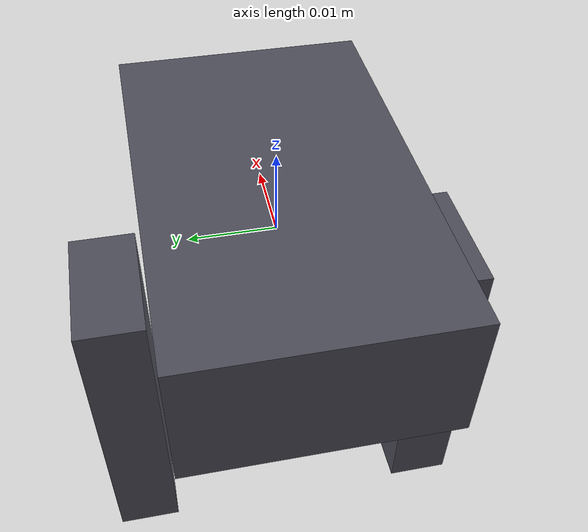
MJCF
<!-- Simplified parallel jaw gripper for UR5e -->
<!-- Attached to wrist_3_link via attachment_site -->
<!-- Gripper local frame: X = finger spread direction, Z = approach (same as site) -->
<mujoco model="gripper">
  <default>
    <default class="gripper">
      <geom rgba="0.3 0.3 0.35 1" contype="1" conaffinity="1"/>
      <joint damping="5"/>
    </default>
  </default>

  <worldbody>
    <body name="gripper_base" pos="0 0 0" quat="0.707 0 0 0.707">
      <!-- Rotate 90deg about Z so fingers spread along X → site Y direction -->

      <!-- Palm plate -->
      <geom name="palm" type="box" size="0.015 0.025 0.008"
            class="gripper" contype="0" conaffinity="0"/>

      <!-- Left finger (+X) -->
      <body name="finger_left" pos="0.02 0 -0.025">
        <joint name="finger_left_joint" type="slide" axis="1 0 0"
               range="0 0.045" class="gripper"/>
        <geom name="finger_left_geom" type="box" size="0.004 0.008 0.02"
              friction="1.0 0.005 0.001" class="gripper"/>
      </body>

      <!-- Right finger (-X), mimics left -->
      <body name="finger_right" pos="-0.02 0 -0.025">
        <joint name="finger_right_joint" type="slide" axis="-1 0 0"
               range="0 0.045" class="gripper"
               mimic="finger_left_joint" coef="-1"/>
        <geom name="finger_right_geom" type="box" size="0.004 0.008 0.02"
              friction="1.0 0.005 0.001" class="gripper"/>
      </body>
    </body>
  </worldbody>
</mujoco>
